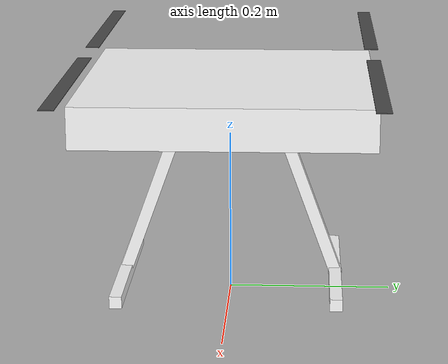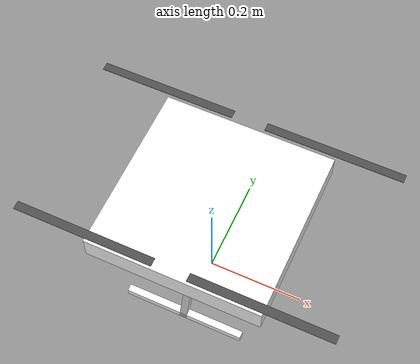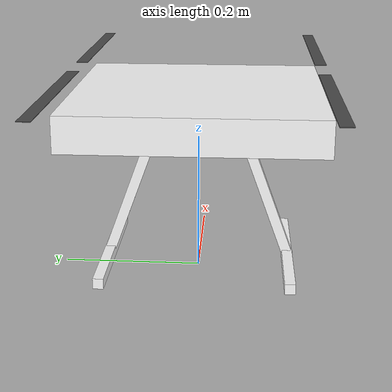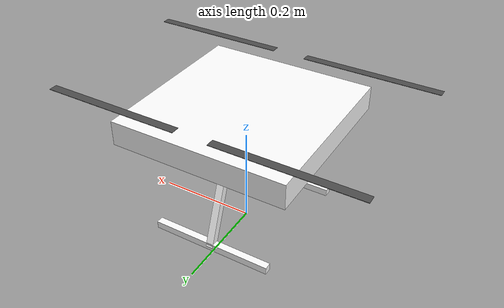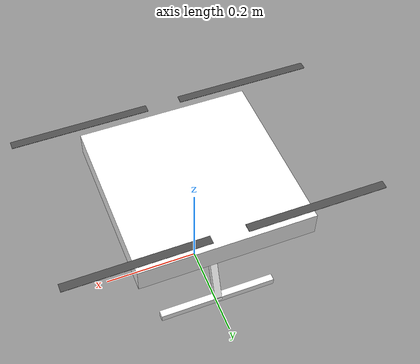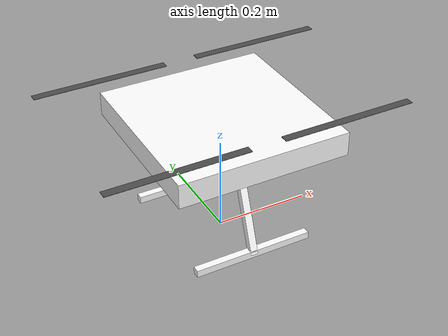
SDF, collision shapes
<?xml version="1.0" encoding="UTF-8"?>
<sdf version='1.9'>
  <model name='x500-Depth'>
    <pose>0 0 .24 0 0 0</pose>
    <self_collide>false</self_collide>
    <static>false</static>
    <link name="base_link">
      <inertial>
        <mass>2.0</mass>
        <inertia>
          <ixx>0.02166666666666667</ixx>
          <ixy>0</ixy>
          <ixz>0</ixz>
          <iyy>0.02166666666666667</iyy>
          <iyz>0</iyz>
          <izz>0.04000000000000001</izz>
        </inertia>
      </inertial>
      <gravity>true</gravity>
      <velocity_decay/>
      <visual name="base_link_visual">
        <pose>0 0 .025 0 0 3.141592654</pose>
        <geometry>
          <mesh>
            <scale>1 1 1</scale>
            <uri>https://fuel.gazebosim.org/1.0/PX4/models/x500/tip/files/meshes/NXP-HGD-CF.dae</uri>
          </mesh>
        </geometry>
      </visual>
      <visual name="5010_motor_base_0">
        <pose>0.174 0.174 .032 0 0 -.45</pose>
        <geometry>
          <mesh>
            <scale>1 1 1</scale>
            <uri>https://fuel.gazebosim.org/1.0/PX4/models/x500/tip/files/meshes/5010Base.dae</uri>
          </mesh>
        </geometry>
      </visual>
      <visual name="5010_motor_base_1">
        <pose>-0.174 0.174 .032 0 0 -.45</pose>
        <geometry>
          <mesh>
            <scale>1 1 1</scale>
            <uri>https://fuel.gazebosim.org/1.0/PX4/models/x500/tip/files/meshes/5010Base.dae</uri>
          </mesh>
        </geometry>
      </visual>
      <visual name="5010_motor_base_2">
        <pose>0.174 -0.174 .032 0 0 -.45</pose>
        <geometry>
          <mesh>
            <scale>1 1 1</scale>
            <uri>https://fuel.gazebosim.org/1.0/PX4/models/x500/tip/files/meshes/5010Base.dae</uri>
          </mesh>
        </geometry>
      </visual>
      <visual name="5010_motor_base_3">
        <pose>-0.174 -0.174 .032 0 0 -.45</pose>
        <geometry>
          <mesh>
            <scale>1 1 1</scale>
            <uri>https://fuel.gazebosim.org/1.0/PX4/models/x500/tip/files/meshes/5010Base.dae</uri>
          </mesh>
        </geometry>
      </visual>
      <visual name="NXP_FMUK66_FRONT">
        <pose>0.047 .001 .043 1 0 1.57</pose>
        <cast_shadows>false</cast_shadows>
        <geometry>
          <plane>
            <normal>0 0 1</normal>
            <size>.013 .007</size>
          </plane>
        </geometry>
        <material>
          <diffuse>1.0 1.0 1.0</diffuse>
          <specular>1.0 1.0 1.0</specular>
          <pbr>
            <metal>
              <albedo_map>https://fuel.gazebosim.org/1.0/PX4/models/x500/tip/files/materials/textures/nxp.png</albedo_map>
            </metal>
          </pbr>
        </material>
      </visual>
      <visual name="NXP_FMUK66_TOP">
        <pose>-0.023 0 .0515 0 0 -1.57</pose>
        <cast_shadows>false</cast_shadows>
        <geometry>
          <plane>
            <normal>0 0 1</normal>
            <size>.013 .007</size>
          </plane>
        </geometry>
        <material>
          <diffuse>1.0 1.0 1.0</diffuse>
          <specular>1.0 1.0 1.0</specular>
          <pbr>
            <metal>
              <albedo_map>https://fuel.gazebosim.org/1.0/PX4/models/x500/tip/files/materials/textures/nxp.png</albedo_map>
            </metal>
          </pbr>
        </material>
      </visual>
      <visual name="RDDRONE_FMUK66_TOP">
        <pose>-.03 0 .0515 0 0 -1.57</pose>
        <cast_shadows>false</cast_shadows>
        <geometry>
          <plane>
            <normal>0 0 1</normal>
            <size>.032 .0034</size>
          </plane>
        </geometry>
        <material>
          <diffuse>1.0 1.0 1.0</diffuse>
          <specular>1.0 1.0 1.0</specular>
          <pbr>
            <metal>
              <albedo_map>https://fuel.gazebosim.org/1.0/PX4/models/x500/tip/files/materials/textures/rd.png</albedo_map>
            </metal>
          </pbr>
        </material>
      </visual>
      <collision name="base_link_collision_0">
        <pose>0 0 .007 0 0 0</pose>
        <geometry>
          <box>
            <size>0.35355339059327373 0.35355339059327373 0.05</size>
          </box>
        </geometry>
        <surface>
          <contact>
            <ode>
              <min_depth>0.001</min_depth>
              <max_vel>0</max_vel>
            </ode>
          </contact>
          <friction>
            <ode/>
          </friction>
        </surface>
      </collision>
      <collision name="base_link_collision_1">
        <pose>0 -0.098 -.123 -0.35 0 0</pose>
        <geometry>
          <box>
            <size>0.015 0.015 0.21</size>
          </box>
        </geometry>
        <surface>
          <contact>
            <ode>
              <min_depth>0.001</min_depth>
              <max_vel>0</max_vel>
            </ode>
          </contact>
          <friction>
            <ode/>
          </friction>
        </surface>
      </collision>
      <collision name="base_link_collision_2">
        <pose>0 0.098 -.123 0.35 0 0</pose>
        <geometry>
          <box>
            <size>0.015 0.015 0.21</size>
          </box>
        </geometry>
        <surface>
          <contact>
            <ode>
              <min_depth>0.001</min_depth>
              <max_vel>0</max_vel>
            </ode>
          </contact>
          <friction>
            <ode/>
          </friction>
        </surface>
      </collision>
      <collision name="base_link_collision_3">
        <pose>0 -0.132 -.2195 0 0 0</pose>
        <geometry>
          <box>
            <size>0.25 0.015 0.015</size>
          </box>
        </geometry>
        <surface>
          <contact>
            <ode>
              <min_depth>0.001</min_depth>
              <max_vel>0</max_vel>
            </ode>
          </contact>
          <friction>
            <ode/>
          </friction>
        </surface>
      </collision>
      <collision name="base_link_collision_4">
        <pose>0 0.132 -.2195 0 0 0</pose>
        <geometry>
          <box>
            <size>0.25 0.015 0.015</size>
          </box>
        </geometry>
        <surface>
          <contact>
            <ode>
              <min_depth>0.001</min_depth>
              <max_vel>0</max_vel>
            </ode>
          </contact>
          <friction>
            <ode/>
          </friction>
        </surface>
      </collision>
      <sensor name="imu_sensor" type="imu">
        <always_on>1</always_on>
        <update_rate>250</update_rate>
      </sensor>
	<sensor name="air_pressure_sensor" type="air_pressure">
        <always_on>1</always_on>
        <update_rate>50</update_rate>
        <air_pressure>
          <pressure>
            <noise type="gaussian">
              <mean>0</mean>
              <stddev>0.01</stddev>
            </noise>
          </pressure>
        </air_pressure>
      </sensor>
    </link>
    <link name="rotor_0">
      <gravity>true</gravity>
      <self_collide>false</self_collide>
      <velocity_decay/>
      <pose>0.174 -0.174 0.06 0 0 0</pose>
      <inertial>
          <mass>0.016076923076923075</mass>
          <inertia>
            <ixx>3.8464910483993325e-07</ixx>
            <iyy>2.6115851691700804e-05</iyy>
            <izz>2.649858234714004e-05</izz>
          </inertia>
        </inertial>
      <visual name="rotor_0_visual">
        <pose>-0.022 -0.14638461538461536 -0.016 0 0 0</pose>
        <geometry>
          <mesh>
            <scale>0.8461538461538461 0.8461538461538461 0.8461538461538461</scale>
            <uri>https://fuel.gazebosim.org/1.0/PX4/models/x500/tip/files/meshes/1345_prop_ccw.stl</uri>
          </mesh>
        </geometry>
        <material>
          <script>
            <name>Gazebo/DarkGrey</name>
            <uri>file://media/materials/scripts/gazebo.material</uri>
          </script>
        </material>
      </visual>
      <visual name="rotor_0_visual_motor_bell">
        <pose>0 0 -.032 0 0 0</pose>
        <geometry>
          <mesh>
            <scale>1 1 1</scale>
            <uri>https://fuel.gazebosim.org/1.0/PX4/models/x500/tip/files/meshes/5010Bell.dae</uri>
          </mesh>
        </geometry>
      </visual>
      <collision name="rotor_0_collision">
        <pose>0 0 0 0 0 0 </pose>
        <geometry>
          <box>
            <size>0.2792307692307692 0.016923076923076923 0.0008461538461538462</size>
          </box>
        </geometry>
        <surface>
          <contact>
            <ode>
              <min_depth>0.001</min_depth>
              <max_vel>0</max_vel>
            </ode>
          </contact>
          <friction>
            <ode/>
          </friction>
        </surface>
      </collision>
    </link>
    <joint name="rotor_0_joint" type="revolute">
      <parent>base_link</parent>
      <child>rotor_0</child>
      <axis>
        <xyz>0 0 1</xyz>
        <limit>
          <lower>-1e+16</lower>
          <upper>1e+16</upper>
        </limit>
        <dynamics>
          <spring_reference>0</spring_reference>
          <spring_stiffness>0</spring_stiffness>
        </dynamics>
      </axis>
    </joint>
    <link name="rotor_1">
      <gravity>true</gravity>
      <self_collide>false</self_collide>
      <velocity_decay/>
      <pose>-0.174 0.174 0.06 0 0 0</pose>
      <inertial>
          <mass>0.016076923076923075</mass>
          <inertia>
            <ixx>3.8464910483993325e-07</ixx>
            <iyy>2.6115851691700804e-05</iyy>
            <izz>2.649858234714004e-05</izz>
          </inertia>
        </inertial>
      <visual name="rotor_1_visual">
        <pose>-0.022 -0.14638461538461536 -0.016 0 0 0</pose>
        <geometry>
          <mesh>
            <scale>0.8461538461538461 0.8461538461538461 0.8461538461538461</scale>
            <uri>https://fuel.gazebosim.org/1.0/PX4/models/x500/tip/files/meshes/1345_prop_ccw.stl</uri>
          </mesh>
        </geometry>
        <material>
          <script>
            <name>Gazebo/DarkGrey</name>
            <uri>file://media/materials/scripts/gazebo.material</uri>
          </script>
        </material>
      </visual>
      <visual name="rotor_1_visual_motor_top">
        <pose>0 0 -.032 0 0 0</pose>
        <geometry>
          <mesh>
            <scale>1 1 1</scale>
            <uri>https://fuel.gazebosim.org/1.0/PX4/models/x500/tip/files/meshes/5010Bell.dae</uri>
          </mesh>
        </geometry>
      </visual>
      <collision name="rotor_1_collision">
        <pose>0 0 0 0 0 0 </pose>
        <geometry>
          <box>
            <size>0.2792307692307692 0.016923076923076923 0.0008461538461538462</size>
          </box>
        </geometry>
        <surface>
          <contact>
            <ode>
              <min_depth>0.001</min_depth>
              <max_vel>0</max_vel>
            </ode>
          </contact>
          <friction>
            <ode/>
          </friction>
        </surface>
      </collision>
    </link>
    <joint name="rotor_1_joint" type="revolute">
      <parent>base_link</parent>
      <child>rotor_1</child>
      <axis>
        <xyz>0 0 1</xyz>
        <limit>
          <lower>-1e+16</lower>
          <upper>1e+16</upper>
        </limit>
        <dynamics>
          <spring_reference>0</spring_reference>
          <spring_stiffness>0</spring_stiffness>
        </dynamics>
      </axis>
    </joint>
    <link name="rotor_2">
      <gravity>true</gravity>
      <self_collide>false</self_collide>
      <velocity_decay/>
      <pose>0.174 0.174 0.06 0 0 0</pose>
      <inertial>
          <mass>0.016076923076923075</mass>
          <inertia>
            <ixx>3.8464910483993325e-07</ixx>
            <iyy>2.6115851691700804e-05</iyy>
            <izz>2.649858234714004e-05</izz>
          </inertia>
        </inertial>
      <visual name="rotor_2_visual">
        <pose>-0.022 -0.14638461538461536 -0.016 0 0 0</pose>
        <geometry>
          <mesh>
            <scale>0.8461538461538461 0.8461538461538461 0.8461538461538461</scale>
            <uri>https://fuel.gazebosim.org/1.0/PX4/models/x500/tip/files/meshes/1345_prop_cw.stl</uri>
          </mesh>
        </geometry>
        <material>
          <script>
            <name>Gazebo/DarkGrey</name>
            <uri>file://media/materials/scripts/gazebo.material</uri>
          </script>
        </material>
      </visual>
      <visual name="rotor_2_visual_motor_top">
        <pose>0 0 -.032 0 0 0</pose>
        <geometry>
          <mesh>
            <scale>1 1 1</scale>
            <uri>https://fuel.gazebosim.org/1.0/PX4/models/x500/tip/files/meshes/5010Bell.dae</uri>
          </mesh>
        </geometry>
      </visual>
      <collision name="rotor_2_collision">
        <pose>0 0 0 0 0 0 </pose>
        <geometry>
          <box>
            <size>0.2792307692307692 0.016923076923076923 0.0008461538461538462</size>
          </box>
        </geometry>
        <surface>
          <contact>
            <ode>
              <min_depth>0.001</min_depth>
              <max_vel>0</max_vel>
            </ode>
          </contact>
          <friction>
            <ode/>
          </friction>
        </surface>
      </collision>
    </link>
    <joint name="rotor_2_joint" type="revolute">
      <parent>base_link</parent>
      <child>rotor_2</child>
      <axis>
        <xyz>0 0 1</xyz>
        <limit>
          <lower>-1e+16</lower>
          <upper>1e+16</upper>
        </limit>
        <dynamics>
          <spring_reference>0</spring_reference>
          <spring_stiffness>0</spring_stiffness>
        </dynamics>
      </axis>
    </joint>
    <link name="rotor_3">
      <gravity>true</gravity>
      <self_collide>false</self_collide>
      <velocity_decay/>
      <pose>-0.174 -0.174 0.06 0 0 0</pose>
      <inertial>
          <mass>0.016076923076923075</mass>
          <inertia>
            <ixx>3.8464910483993325e-07</ixx>
            <iyy>2.6115851691700804e-05</iyy>
            <izz>2.649858234714004e-05</izz>
          </inertia>
        </inertial>
      <visual name="rotor_3_visual">
        <pose>-0.022 -0.14638461538461536 -0.016 0 0 0</pose>
        <geometry>
          <mesh>
            <scale>0.8461538461538461 0.8461538461538461 0.8461538461538461</scale>
            <uri>https://fuel.gazebosim.org/1.0/PX4/models/x500/tip/files/meshes/1345_prop_cw.stl</uri>
          </mesh>
        </geometry>
        <material>
          <script>
            <name>Gazebo/DarkGrey</name>
            <uri>file://media/materials/scripts/gazebo.material</uri>
          </script>
        </material>
      </visual>
      <visual name="rotor_3_visual_motor_top">
        <pose>0 0 -.032 0 0 0</pose>
        <geometry>
          <mesh>
            <scale>1 1 1</scale>
            <uri>https://fuel.gazebosim.org/1.0/PX4/models/x500/tip/files/meshes/5010Bell.dae</uri>
          </mesh>
        </geometry>
      </visual>
      <collision name="rotor_3_collision">
        <pose>0 0 0 0 0 0 </pose>
        <geometry>
          <box>
            <size>0.2792307692307692 0.016923076923076923 0.0008461538461538462</size>
          </box>
        </geometry>
        <surface>
          <contact>
            <ode>
              <min_depth>0.001</min_depth>
              <max_vel>0</max_vel>
            </ode>
          </contact>
          <friction>
            <ode/>
          </friction>
        </surface>
      </collision>
    </link>
    <joint name="rotor_3_joint" type="revolute">
      <parent>base_link</parent>
      <child>rotor_3</child>
      <axis>
        <xyz>0 0 1</xyz>
        <limit>
          <lower>-1e+16</lower>
          <upper>1e+16</upper>
        </limit>
        <dynamics>
          <spring_reference>0</spring_reference>
          <spring_stiffness>0</spring_stiffness>
        </dynamics>
=      </axis>
    </joint>
    <plugin filename="gz-sim-multicopter-motor-model-system" name="gz::sim::systems::MulticopterMotorModel">
      <jointName>rotor_0_joint</jointName>
      <linkName>rotor_0</linkName>
      <turningDirection>ccw</turningDirection>
      <timeConstantUp>0.0125</timeConstantUp>
      <timeConstantDown>0.025</timeConstantDown>
      <maxRotVelocity>1000.0</maxRotVelocity>
      <motorConstant>8.54858e-06</motorConstant>
      <momentConstant>0.016</momentConstant>
      <commandSubTopic>command/motor_speed</commandSubTopic>
      <motorNumber>0</motorNumber>
      <rotorDragCoefficient>8.06428e-05</rotorDragCoefficient>
      <rollingMomentCoefficient>1e-06</rollingMomentCoefficient>
      <rotorVelocitySlowdownSim>10</rotorVelocitySlowdownSim>
      <motorType>velocity</motorType>
    </plugin>
    <plugin filename="gz-sim-multicopter-motor-model-system" name="gz::sim::systems::MulticopterMotorModel">
      <jointName>rotor_1_joint</jointName>
      <linkName>rotor_1</linkName>
      <turningDirection>ccw</turningDirection>
      <timeConstantUp>0.0125</timeConstantUp>
      <timeConstantDown>0.025</timeConstantDown>
      <maxRotVelocity>1000.0</maxRotVelocity>
      <motorConstant>8.54858e-06</motorConstant>
      <momentConstant>0.016</momentConstant>
      <commandSubTopic>command/motor_speed</commandSubTopic>
      <motorNumber>1</motorNumber>
      <rotorDragCoefficient>8.06428e-05</rotorDragCoefficient>
      <rollingMomentCoefficient>1e-06</rollingMomentCoefficient>
      <rotorVelocitySlowdownSim>10</rotorVelocitySlowdownSim>
      <motorType>velocity</motorType>
    </plugin>
    <plugin filename="gz-sim-multicopter-motor-model-system" name="gz::sim::systems::MulticopterMotorModel">
      <jointName>rotor_2_joint</jointName>
      <linkName>rotor_2</linkName>
      <turningDirection>cw</turningDirection>
      <timeConstantUp>0.0125</timeConstantUp>
      <timeConstantDown>0.025</timeConstantDown>
      <maxRotVelocity>1000.0</maxRotVelocity>
      <motorConstant>8.54858e-06</motorConstant>
      <momentConstant>0.016</momentConstant>
      <commandSubTopic>command/motor_speed</commandSubTopic>
      <motorNumber>2</motorNumber>
      <rotorDragCoefficient>8.06428e-05</rotorDragCoefficient>
      <rollingMomentCoefficient>1e-06</rollingMomentCoefficient>
      <rotorVelocitySlowdownSim>10</rotorVelocitySlowdownSim>
      <motorType>velocity</motorType>
    </plugin>
    <plugin filename="gz-sim-multicopter-motor-model-system" name="gz::sim::systems::MulticopterMotorModel">
      <jointName>rotor_3_joint</jointName>
      <linkName>rotor_3</linkName>
      <turningDirection>cw</turningDirection>
      <timeConstantUp>0.0125</timeConstantUp>
      <timeConstantDown>0.025</timeConstantDown>
      <maxRotVelocity>1000.0</maxRotVelocity>
      <motorConstant>8.54858e-06</motorConstant>
      <momentConstant>0.016</momentConstant>
      <commandSubTopic>command/motor_speed</commandSubTopic>
      <motorNumber>3</motorNumber>
      <rotorDragCoefficient>8.06428e-05</rotorDragCoefficient>
      <rollingMomentCoefficient>1e-06</rollingMomentCoefficient>
      <rotorVelocitySlowdownSim>10</rotorVelocitySlowdownSim>
      <motorType>velocity</motorType>
    </plugin>

    <link name="OakD-Lite/base_link">
      <inertial>
        <pose>0.00358 -0.03 .014 0 0 0</pose>
        <mass>0.061</mass>
        <inertia>
          <ixx>0.0000460804</ixx>
          <ixy>0</ixy>
          <ixz>0</ixz>
          <iyy>0.0000055421</iyy>
          <iyz>0</iyz>
          <izz>0.0000436519</izz>
        </inertia>
      </inertial>
      <visual name="OakD-Lite/visual">
        <pose>.12 .03 .242 0 0 0</pose>
        <geometry>
          <mesh>
            <scale>1 1 1</scale>
            <uri>https://fuel.gazebosim.org/1.0/RudisLaboratories/models/OakD-Lite/tip/files/meshes/OakDLite.dae</uri>
          </mesh>
        </geometry>
      </visual>
      <collision name="OakD-Lite/collision">
        <pose>0.00358 -0.03 .014 0 0 0</pose>
        <geometry>
          <box>
            <size>0.0175 0.091 0.028</size>
          </box>
        </geometry>
      </collision>

      <sensor name="IMX214" type="camera">
        <pose>0.01233 -0.03 .01878 0 0 0</pose>
        <camera>
          <horizontal_fov>1.204</horizontal_fov>
          <image>
            <width>1920</width>
            <height>1080</height>
          </image>
          <clip>
            <near>0.1</near>
            <far>100</far>
          </clip>
        </camera>
        <always_on>1</always_on>
        <update_rate>30</update_rate>
        <visualize>true</visualize>
        <topic>camera</topic>
        <plugin filename="gz-sim-gst-camera-system" name="gz::sim::systems::GstCamera">
          <useCuda>0</useCuda>
          <udpHost>10.41.200.1</udpHost>
          <udpPort>5600</udpPort>
          <rtmpLocation>rtmp://localhost:1935/live</rtmpLocation>
          <service>camera/video_stream</service>
        </plugin>
      </sensor>

      <sensor name="StereoOV7251" type="depth_camera">
        <pose>0.01233 -0.03 .01878 0 0 0</pose>
        <camera>
          <horizontal_fov>1.274</horizontal_fov>
          <image>
            <width>640</width>
            <height>480</height>
            <format>R_FLOAT32</format>
          </image>
          <clip>
            <near>0.2</near>
            <far>19.1</far>
          </clip>
        </camera>
        <always_on>1</always_on>
        <update_rate>30</update_rate>
        <visualize>true</visualize>
        <topic>depth_camera</topic>
      </sensor>

      <gravity>true</gravity>
      <velocity_decay/>
    </link>

    <joint name="CameraJoint" type="fixed">
      <parent>base_link</parent>
      <child>OakD-Lite/base_link</child>
      <pose relative_to="base_link">.12 .03 .242 0 0 0</pose>
    </joint>

  </model>
</sdf>
